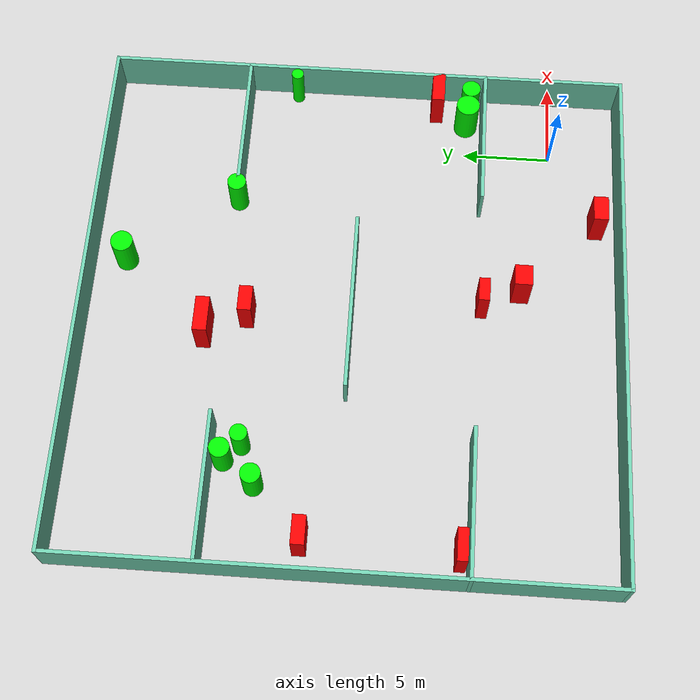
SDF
<sdf version="1.7">
 <world name="default">
  <light name="sun" type="directional">
   <pose>0 0 10 0 -0 0</pose>
   <diffuse>0.8 0.8 0.8 1</diffuse>
   <specular>0.2 0.2 0.2 1</specular>
   <attenuation>
    <range>1000</range>
    <constant>0.9</constant>
    <linear>0.01</linear>
    <quadratic>0.001</quadratic>
   </attenuation>
   <direction>-0.5 0.1 -0.9</direction>
   <spot><inner_angle>0</inner_angle><outer_angle>0</outer_angle><falloff>0</falloff></spot>
  </light>
  <model name="ground_plane">
   <static>1</static>
   <link name="link">
    <collision name="collision">
     <geometry><plane><normal>0 0 1</normal><size>100 100</size></plane></geometry>
     <surface>
      <contact><collide_bitmask>65535</collide_bitmask></contact>
      <friction><ode><mu>100</mu><mu2>50</mu2></ode></friction>
     </surface>
    </collision>
    <visual name="visual">
     <cast_shadows>0</cast_shadows>
     <geometry><plane><normal>0 0 1</normal><size>100 100</size></plane></geometry>
     <material>
      <script><uri>file://media/materials/scripts/gazebo.material</uri><name>Gazebo/Grey</name></script>
     </material>
    </visual>
   </link>
  </model>
  <gravity>0 0 -9.8</gravity>
  <magnetic_field>6e-06 2.3e-05 -4.2e-05</magnetic_field>
  <atmosphere type="adiabatic"/>
  <physics type="ode">
   <max_step_size>0.001</max_step_size>
   <real_time_factor>1</real_time_factor>
   <real_time_update_rate>1000</real_time_update_rate>
  </physics>
  <scene><ambient>0.4 0.4 0.4 1</ambient><background>0.7 0.7 0.7 1</background><shadows>1</shadows></scene>
  <spherical_coordinates>
   <surface_model>EARTH_WGS84</surface_model>
   <latitude_deg>0</latitude_deg>
   <longitude_deg>0</longitude_deg>
   <elevation>0</elevation>
   <heading_deg>0</heading_deg>
  </spherical_coordinates>
  <model name="my_base_walls">
   <link name="Wall_10">
    <collision name="Wall_10_Collision">
     <geometry><box><size>8.2 0.2 2.5</size></box></geometry>
     <pose>0 0 1.25 0 -0 0</pose>
    </collision>
    <visual name="Wall_10_Visual">
     <pose>0 0 1.25 0 -0 0</pose>
     <geometry><box><size>8.2 0.2 2.5</size></box></geometry>
     <material>
      <script><uri>file://media/materials/scripts/gazebo.material</uri><name>Gazebo/Grey</name></script>
      <ambient>0.435294 0.796078 0.67451 1</ambient>
     </material>
     <meta><layer>0</layer></meta>
    </visual>
    <pose>-11 -7 0 0 -0 0</pose>
   </link>
   <link name="Wall_12">
    <collision name="Wall_12_Collision">
     <geometry><box><size>8.2 0.2 2.5</size></box></geometry>
     <pose>0 0 1.25 0 -0 0</pose>
    </collision>
    <visual name="Wall_12_Visual">
     <pose>0 0 1.25 0 -0 0</pose>
     <geometry><box><size>8.2 0.2 2.5</size></box></geometry>
     <material>
      <script><uri>file://media/materials/scripts/gazebo.material</uri><name>Gazebo/Grey</name></script>
      <ambient>0.435294 0.796078 0.67451 1</ambient>
     </material>
     <meta><layer>0</layer></meta>
    </visual>
    <pose>-11 7 0 0 -0 0</pose>
   </link>
   <link name="Wall_14">
    <collision name="Wall_14_Collision">
     <geometry><box><size>8.2 0.2 2.5</size></box></geometry>
     <pose>0 0 1.25 0 -0 0</pose>
    </collision>
    <visual name="Wall_14_Visual">
     <pose>0 0 1.25 0 -0 0</pose>
     <geometry><box><size>8.2 0.2 2.5</size></box></geometry>
     <material>
      <script><uri>file://media/materials/scripts/gazebo.material</uri><name>Gazebo/Grey</name></script>
      <ambient>0.435294 0.796078 0.67451 1</ambient>
     </material>
     <meta><layer>0</layer></meta>
    </visual>
    <pose>11 7 0 0 -0 3.14159</pose>
   </link>
   <link name="Wall_16">
    <collision name="Wall_16_Collision">
     <geometry><box><size>10.2 0.2 2.5</size></box></geometry>
     <pose>0 0 1.25 0 -0 0</pose>
    </collision>
    <visual name="Wall_16_Visual">
     <pose>0 0 1.25 0 -0 0</pose>
     <geometry><box><size>10.2 0.2 2.5</size></box></geometry>
     <material>
      <script><uri>file://media/materials/scripts/gazebo.material</uri><name>Gazebo/Grey</name></script>
      <ambient>0.435294 0.796078 0.67451 1</ambient>
     </material>
     <meta><layer>0</layer></meta>
    </visual>
    <pose>0 0 0 0 -0 3.14159</pose>
   </link>
   <link name="Wall_2">
    <collision name="Wall_2_Collision">
     <geometry><box><size>30.2 0.2 2.5</size></box></geometry>
     <pose>0 0 1.25 0 -0 0</pose>
    </collision>
    <visual name="Wall_2_Visual">
     <pose>0 0 1.25 0 -0 0</pose>
     <geometry><box><size>30.2 0.2 2.5</size></box></geometry>
     <material>
      <script><uri>file://media/materials/scripts/gazebo.material</uri><name>Gazebo/Grey</name></script>
      <ambient>0.435294 0.796078 0.67451 1</ambient>
     </material>
     <meta><layer>0</layer></meta>
    </visual>
    <pose>0 -15 0 0 -0 3.14159</pose>
   </link>
   <link name="Wall_3">
    <collision name="Wall_3_Collision">
     <geometry><box><size>30.2 0.2 2.5</size></box></geometry>
     <pose>0 0 1.25 0 -0 0</pose>
    </collision>
    <visual name="Wall_3_Visual">
     <pose>0 0 1.25 0 -0 0</pose>
     <geometry><box><size>30.2 0.2 2.5</size></box></geometry>
     <material>
      <script><uri>file://media/materials/scripts/gazebo.material</uri><name>Gazebo/Grey</name></script>
      <ambient>0.435294 0.796078 0.67451 1</ambient>
     </material>
     <meta><layer>0</layer></meta>
    </visual>
    <pose>-15 0 0 0 -0 1.5708</pose>
   </link>
   <link name="Wall_4">
    <collision name="Wall_4_Collision">
     <geometry><box><size>30.2 0.2 2.5</size></box></geometry>
     <pose>0 0 1.25 0 -0 0</pose>
    </collision>
    <visual name="Wall_4_Visual">
     <pose>0 0 1.25 0 -0 0</pose>
     <geometry><box><size>30.2 0.2 2.5</size></box></geometry>
     <material>
      <script><uri>file://media/materials/scripts/gazebo.material</uri><name>Gazebo/Grey</name></script>
      <ambient>0.435294 0.796078 0.67451 1</ambient>
     </material>
     <meta><layer>0</layer></meta>
    </visual>
    <pose>0 15 0 0 -0 0</pose>
   </link>
   <link name="Wall_6">
    <collision name="Wall_6_Collision">
     <geometry><box><size>30.2 0.2 2.5</size></box></geometry>
     <pose>0 0 1.25 0 -0 0</pose>
    </collision>
    <visual name="Wall_6_Visual">
     <pose>0 0 1.25 0 -0 0</pose>
     <geometry><box><size>30.2 0.2 2.5</size></box></geometry>
     <material>
      <script><uri>file://media/materials/scripts/gazebo.material</uri><name>Gazebo/Grey</name></script>
      <ambient>0.435294 0.796078 0.67451 1</ambient>
     </material>
     <meta><layer>0</layer></meta>
    </visual>
    <pose>15 0 0 0 -0 1.5708</pose>
   </link>
   <link name="Wall_8">
    <collision name="Wall_8_Collision">
     <geometry><box><size>8.2 0.2 2.5</size></box></geometry>
     <pose>0 0 1.25 0 -0 0</pose>
    </collision>
    <visual name="Wall_8_Visual">
     <pose>0 0 1.25 0 -0 0</pose>
     <geometry><box><size>8.2 0.2 2.5</size></box></geometry>
     <material>
      <script><uri>file://media/materials/scripts/gazebo.material</uri><name>Gazebo/Grey</name></script>
      <ambient>0.435294 0.796078 0.67451 1</ambient>
     </material>
     <meta><layer>0</layer></meta>
    </visual>
    <pose>11 -7 0 0 -0 3.14159</pose>
   </link>
   <static>1</static>
   <pose>-11 11 0 0 -0 0</pose>
  </model>
  <model name="cylinder1">
   <static>1</static>
   <link name="link">
    <inertial>
     <mass>1</mass>
     <inertia><ixx>0.5</ixx><ixy>0</ixy><ixz>0</ixz><iyy>0.5</iyy><iyz>0</iyz><izz>1</izz></inertia>
    </inertial>
    <collision name="collision">
     <geometry><cylinder><radius>0.624262947031996</radius><length>2.5</length></cylinder></geometry>
    </collision>
    <visual name="visual">
     <geometry><cylinder><radius>0.624262947031996</radius><length>2.5</length></cylinder></geometry>
     <material>
      <ambient>0 1 0 1</ambient>
      <diffuse>0 1 0 1</diffuse>
      <specular>0.1 0.1 0.1 1</specular>
      <emissive>0 0 0 0</emissive>
     </material>
    </visual>
   </link>
   <pose>-8.304651855340655 24.09106757469317 1.25 0 0 0</pose>
  </model>
  <model name="cylinder2">
   <static>1</static>
   <link name="link">
    <inertial>
     <mass>1</mass>
     <inertia><ixx>0.5</ixx><ixy>0</ixy><ixz>0</ixz><iyy>0.5</iyy><iyz>0</iyz><izz>1</izz></inertia>
    </inertial>
    <collision name="collision">
     <geometry><cylinder><radius>0.5308962090952465</radius><length>2.5</length></cylinder></geometry>
    </collision>
    <visual name="visual">
     <geometry><cylinder><radius>0.5308962090952465</radius><length>2.5</length></cylinder></geometry>
     <material>
      <ambient>0 1 0 1</ambient>
      <diffuse>0 1 0 1</diffuse>
      <specular>0.1 0.1 0.1 1</specular>
      <emissive>0 0 0 0</emissive>
     </material>
    </visual>
   </link>
   <pose>-4.064794391618452 18.04691898516947 1.25 0 0 0</pose>
  </model>
  <model name="cylinder3">
   <static>1</static>
   <link name="link">
    <inertial>
     <mass>1</mass>
     <inertia><ixx>0.5</ixx><ixy>0</ixy><ixz>0</ixz><iyy>0.5</iyy><iyz>0</iyz><izz>1</izz></inertia>
    </inertial>
    <collision name="collision">
     <geometry><cylinder><radius>0.6735207462621833</radius><length>2.5</length></cylinder></geometry>
    </collision>
    <visual name="visual">
     <geometry><cylinder><radius>0.6735207462621833</radius><length>2.5</length></cylinder></geometry>
     <material>
      <ambient>0 1 0 1</ambient>
      <diffuse>0 1 0 1</diffuse>
      <specular>0.1 0.1 0.1 1</specular>
      <emissive>0 0 0 0</emissive>
     </material>
    </visual>
   </link>
   <pose>1.984404629615419 4.964809953125702 1.25 0 0 0</pose>
  </model>
  <model name="cylinder4">
   <static>1</static>
   <link name="link">
    <inertial>
     <mass>1</mass>
     <inertia><ixx>0.5</ixx><ixy>0</ixy><ixz>0</ixz><iyy>0.5</iyy><iyz>0</iyz><izz>1</izz></inertia>
    </inertial>
    <collision name="collision">
     <geometry><cylinder><radius>0.35046538317402465</radius><length>2.5</length></cylinder></geometry>
    </collision>
    <visual name="visual">
     <geometry><cylinder><radius>0.35046538317402465</radius><length>2.5</length></cylinder></geometry>
     <material>
      <ambient>0 1 0 1</ambient>
      <diffuse>0 1 0 1</diffuse>
      <specular>0.1 0.1 0.1 1</specular>
      <emissive>0 0 0 0</emissive>
     </material>
    </visual>
   </link>
   <pose>3.5284594460097907 15.180155339821166 1.25 0 0 0</pose>
  </model>
  <model name="cylinder5">
   <static>1</static>
   <link name="link">
    <inertial>
     <mass>1</mass>
     <inertia><ixx>0.5</ixx><ixy>0</ixy><ixz>0</ixz><iyy>0.5</iyy><iyz>0</iyz><izz>1</izz></inertia>
    </inertial>
    <collision name="collision">
     <geometry><cylinder><radius>0.5554512613659556</radius><length>2.5</length></cylinder></geometry>
    </collision>
    <visual name="visual">
     <geometry><cylinder><radius>0.5554512613659556</radius><length>2.5</length></cylinder></geometry>
     <material>
      <ambient>0 1 0 1</ambient>
      <diffuse>0 1 0 1</diffuse>
      <specular>0.1 0.1 0.1 1</specular>
      <emissive>0 0 0 0</emissive>
     </material>
    </visual>
   </link>
   <pose>-19.97853559601195 17.322273737955936 1.25 0 0 0</pose>
  </model>
  <model name="cylinder6">
   <static>1</static>
   <link name="link">
    <inertial>
     <mass>1</mass>
     <inertia><ixx>0.5</ixx><ixy>0</ixy><ixz>0</ixz><iyy>0.5</iyy><iyz>0</iyz><izz>1</izz></inertia>
    </inertial>
    <collision name="collision">
     <geometry><cylinder><radius>0.5489543318397629</radius><length>2.5</length></cylinder></geometry>
    </collision>
    <visual name="visual">
     <geometry><cylinder><radius>0.5489543318397629</radius><length>2.5</length></cylinder></geometry>
     <material>
      <ambient>0 1 0 1</ambient>
      <diffuse>0 1 0 1</diffuse>
      <specular>0.1 0.1 0.1 1</specular>
      <emissive>0 0 0 0</emissive>
     </material>
    </visual>
   </link>
   <pose>-21.25893556257125 15.57039268519793 1.25 0 0 0</pose>
  </model>
  <model name="cylinder7">
   <static>1</static>
   <link name="link">
    <inertial>
     <mass>1</mass>
     <inertia><ixx>0.5</ixx><ixy>0</ixy><ixz>0</ixz><iyy>0.5</iyy><iyz>0</iyz><izz>1</izz></inertia>
    </inertial>
    <collision name="collision">
     <geometry><cylinder><radius>0.47524849036470795</radius><length>2.5</length></cylinder></geometry>
    </collision>
    <visual name="visual">
     <geometry><cylinder><radius>0.47524849036470795</radius><length>2.5</length></cylinder></geometry>
     <material>
      <ambient>0 1 0 1</ambient>
      <diffuse>0 1 0 1</diffuse>
      <specular>0.1 0.1 0.1 1</specular>
      <emissive>0 0 0 0</emissive>
     </material>
    </visual>
   </link>
   <pose>-19.111152516648318 16.399323005302186 1.25 0 0 0</pose>
  </model>
  <model name="cylinder8">
   <static>1</static>
   <link name="link">
    <inertial>
     <mass>1</mass>
     <inertia><ixx>0.5</ixx><ixy>0</ixy><ixz>0</ixz><iyy>0.5</iyy><iyz>0</iyz><izz>1</izz></inertia>
    </inertial>
    <collision name="collision">
     <geometry><cylinder><radius>0.5356037983126767</radius><length>2.5</length></cylinder></geometry>
    </collision>
    <visual name="visual">
     <geometry><cylinder><radius>0.5356037983126767</radius><length>2.5</length></cylinder></geometry>
     <material>
      <ambient>0 1 0 1</ambient>
      <diffuse>0 1 0 1</diffuse>
      <specular>0.1 0.1 0.1 1</specular>
      <emissive>0 0 0 0</emissive>
     </material>
    </visual>
   </link>
   <pose>3.161748666903339 4.8076687360381545 1.25 0 0 0</pose>
  </model>
  <model name="box1">
   <static>1</static>
   <link name="link">
    <inertial>
     <mass>1</mass>
     <inertia><ixx>0.083</ixx><ixy>0</ixy><ixz>0</ixz><iyy>0.083</iyy><iyz>0</iyz><izz>0.083</izz></inertia>
    </inertial>
    <collision name="collision">
     <geometry><box><size>1.7874933035838128 0.7307698293494946 2.5</size></box></geometry>
    </collision>
    <visual name="visual">
     <geometry><box><size>1.7874933035838128 0.7307698293494946 2.5</size></box></geometry>
     <material>
      <ambient>1 0 0 1</ambient>
      <diffuse>1 0 0 1</diffuse>
      <specular>0.1 0.1 0.1 1</specular>
      <emissive>0 0 0 0</emissive>
     </material>
    </visual>
    <sensor name="my_contact" type="contact">
     <contact><collision>box_collision</collision><topic>__default_topic__</topic></contact>
    </sensor>
   </link>
   <pose>3.161232569072059 6.736971859687406 1.25 0 0 0</pose>
  </model>
  <model name="box2">
   <static>1</static>
   <link name="link">
    <inertial>
     <mass>1</mass>
     <inertia><ixx>0.083</ixx><ixy>0</ixy><ixz>0</ixz><iyy>0.083</iyy><iyz>0</iyz><izz>0.083</izz></inertia>
    </inertial>
    <collision name="collision">
     <geometry><box><size>2.009088249105881 0.7813982895405841 2.5</size></box></geometry>
    </collision>
    <visual name="visual">
     <geometry><box><size>2.009088249105881 0.7813982895405841 2.5</size></box></geometry>
     <material>
      <ambient>1 0 0 1</ambient>
      <diffuse>1 0 0 1</diffuse>
      <specular>0.1 0.1 0.1 1</specular>
      <emissive>0 0 0 0</emissive>
     </material>
    </visual>
    <sensor name="my_contact" type="contact">
     <contact><collision>box_collision</collision><topic>__default_topic__</topic></contact>
    </sensor>
   </link>
   <pose>-12.419978616759838 19.144393599600257 1.25 0 0 0</pose>
  </model>
  <model name="box3">
   <static>1</static>
   <link name="link">
    <inertial>
     <mass>1</mass>
     <inertia><ixx>0.083</ixx><ixy>0</ixy><ixz>0</ixz><iyy>0.083</iyy><iyz>0</iyz><izz>0.083</izz></inertia>
    </inertial>
    <collision name="collision">
     <geometry><box><size>1.1884481878246684 0.9985076367876962 2.5</size></box></geometry>
    </collision>
    <visual name="visual">
     <geometry><box><size>1.1884481878246684 0.9985076367876962 2.5</size></box></geometry>
     <material>
      <ambient>1 0 0 1</ambient>
      <diffuse>1 0 0 1</diffuse>
      <specular>0.1 0.1 0.1 1</specular>
      <emissive>0 0 0 0</emissive>
     </material>
    </visual>
    <sensor name="my_contact" type="contact">
     <contact><collision>box_collision</collision><topic>__default_topic__</topic></contact>
    </sensor>
   </link>
   <pose>-8.928531829806897 1.5697004992510895 1.25 0 0 0</pose>
  </model>
  <model name="box4">
   <static>1</static>
   <link name="link">
    <inertial>
     <mass>1</mass>
     <inertia><ixx>0.083</ixx><ixy>0</ixy><ixz>0</ixz><iyy>0.083</iyy><iyz>0</iyz><izz>0.083</izz></inertia>
    </inertial>
    <collision name="collision">
     <geometry><box><size>1.452245552727502 0.7671831632110195 2.5</size></box></geometry>
    </collision>
    <visual name="visual">
     <geometry><box><size>1.452245552727502 0.7671831632110195 2.5</size></box></geometry>
     <material>
      <ambient>1 0 0 1</ambient>
      <diffuse>1 0 0 1</diffuse>
      <specular>0.1 0.1 0.1 1</specular>
      <emissive>0 0 0 0</emissive>
     </material>
    </visual>
    <sensor name="my_contact" type="contact">
     <contact><collision>box_collision</collision><topic>__default_topic__</topic></contact>
    </sensor>
   </link>
   <pose>-11.34098640957583 16.836151609777392 1.25 0 0 0</pose>
  </model>
  <model name="box5">
   <static>1</static>
   <link name="link">
    <inertial>
     <mass>1</mass>
     <inertia><ixx>0.083</ixx><ixy>0</ixy><ixz>0</ixz><iyy>0.083</iyy><iyz>0</iyz><izz>0.083</izz></inertia>
    </inertial>
    <collision name="collision">
     <geometry><box><size>1.5670888367344904 0.7366136965781422 2.5</size></box></geometry>
    </collision>
    <visual name="visual">
     <geometry><box><size>1.5670888367344904 0.7366136965781422 2.5</size></box></geometry>
     <material>
      <ambient>1 0 0 1</ambient>
      <diffuse>1 0 0 1</diffuse>
      <specular>0.1 0.1 0.1 1</specular>
      <emissive>0 0 0 0</emissive>
     </material>
    </visual>
    <sensor name="my_contact" type="contact">
     <contact><collision>box_collision</collision><topic>__default_topic__</topic></contact>
    </sensor>
   </link>
   <pose>-24.048809349702243 12.840845251462214 1.25 0 0 0</pose>
  </model>
  <model name="box6">
   <static>1</static>
   <link name="link">
    <inertial>
     <mass>1</mass>
     <inertia><ixx>0.083</ixx><ixy>0</ixy><ixz>0</ixz><iyy>0.083</iyy><iyz>0</iyz><izz>0.083</izz></inertia>
    </inertial>
    <collision name="collision">
     <geometry><box><size>1.4554480074938958 0.8359108890458076 2.5</size></box></geometry>
    </collision>
    <visual name="visual">
     <geometry><box><size>1.4554480074938958 0.8359108890458076 2.5</size></box></geometry>
     <material>
      <ambient>1 0 0 1</ambient>
      <diffuse>1 0 0 1</diffuse>
      <specular>0.1 0.1 0.1 1</specular>
      <emissive>0 0 0 0</emissive>
     </material>
    </visual>
    <sensor name="my_contact" type="contact">
     <contact><collision>box_collision</collision><topic>__default_topic__</topic></contact>
    </sensor>
   </link>
   <pose>-4.4275148867133165 -2.7621242313246013 1.25 0 0 0</pose>
  </model>
  <model name="box7">
   <static>1</static>
   <link name="link">
    <inertial>
     <mass>1</mass>
     <inertia><ixx>0.083</ixx><ixy>0</ixy><ixz>0</ixz><iyy>0.083</iyy><iyz>0</iyz><izz>0.083</izz></inertia>
    </inertial>
    <collision name="collision">
     <geometry><box><size>1.3397573467227386 0.614235052732237 2.5</size></box></geometry>
    </collision>
    <visual name="visual">
     <geometry><box><size>1.3397573467227386 0.614235052732237 2.5</size></box></geometry>
     <material>
      <ambient>1 0 0 1</ambient>
      <diffuse>1 0 0 1</diffuse>
      <specular>0.1 0.1 0.1 1</specular>
      <emissive>0 0 0 0</emissive>
     </material>
    </visual>
    <sensor name="my_contact" type="contact">
     <contact><collision>box_collision</collision><topic>__default_topic__</topic></contact>
    </sensor>
   </link>
   <pose>-9.935975228190152 3.7159894151101955 1.25 0 0 0</pose>
  </model>
  <model name="box8">
   <static>1</static>
   <link name="link">
    <inertial>
     <mass>1</mass>
     <inertia><ixx>0.083</ixx><ixy>0</ixy><ixz>0</ixz><iyy>0.083</iyy><iyz>0</iyz><izz>0.083</izz></inertia>
    </inertial>
    <collision name="collision">
     <geometry><box><size>1.753283136222191 0.5796604632671027 2.5</size></box></geometry>
    </collision>
    <visual name="visual">
     <geometry><box><size>1.753283136222191 0.5796604632671027 2.5</size></box></geometry>
     <material>
      <ambient>1 0 0 1</ambient>
      <diffuse>1 0 0 1</diffuse>
      <specular>0.1 0.1 0.1 1</specular>
      <emissive>0 0 0 0</emissive>
     </material>
    </visual>
    <sensor name="my_contact" type="contact">
     <contact><collision>box_collision</collision><topic>__default_topic__</topic></contact>
    </sensor>
   </link>
   <pose>-24.250861496449655 4.468403227014057 1.25 0 0 0</pose>
  </model>
 </world>
</sdf>
